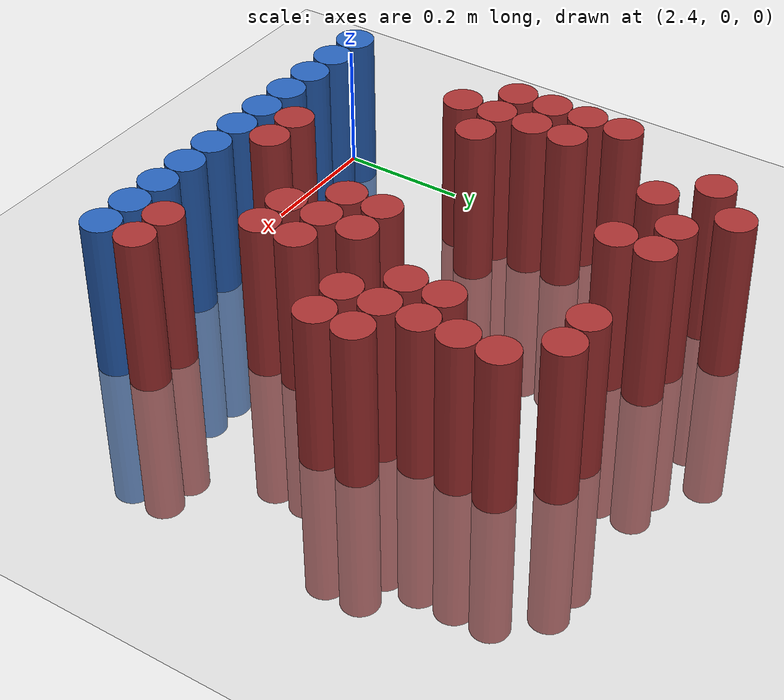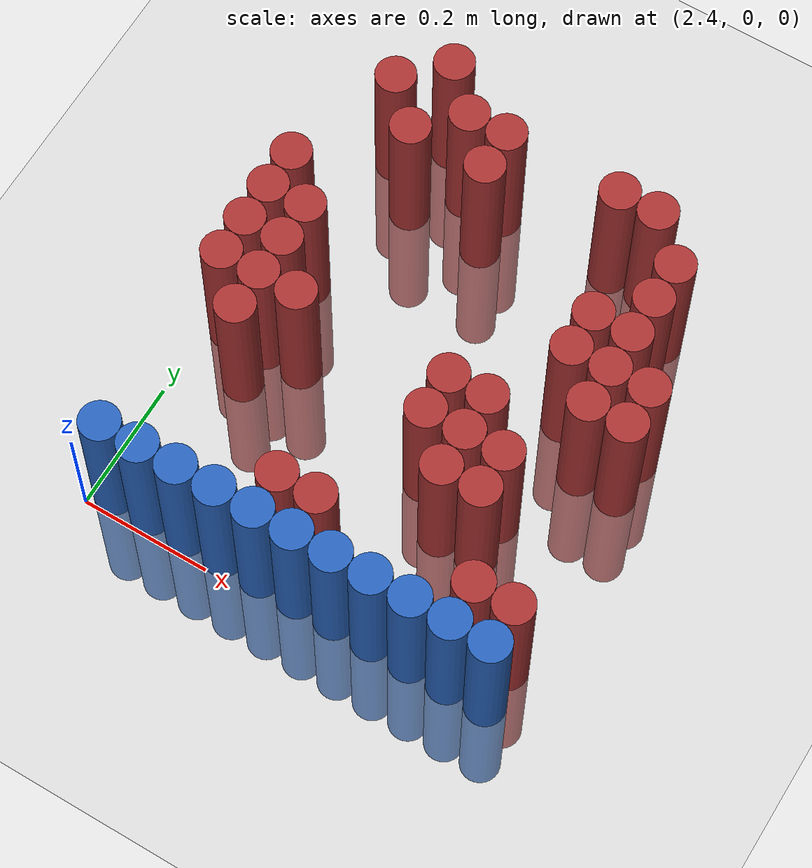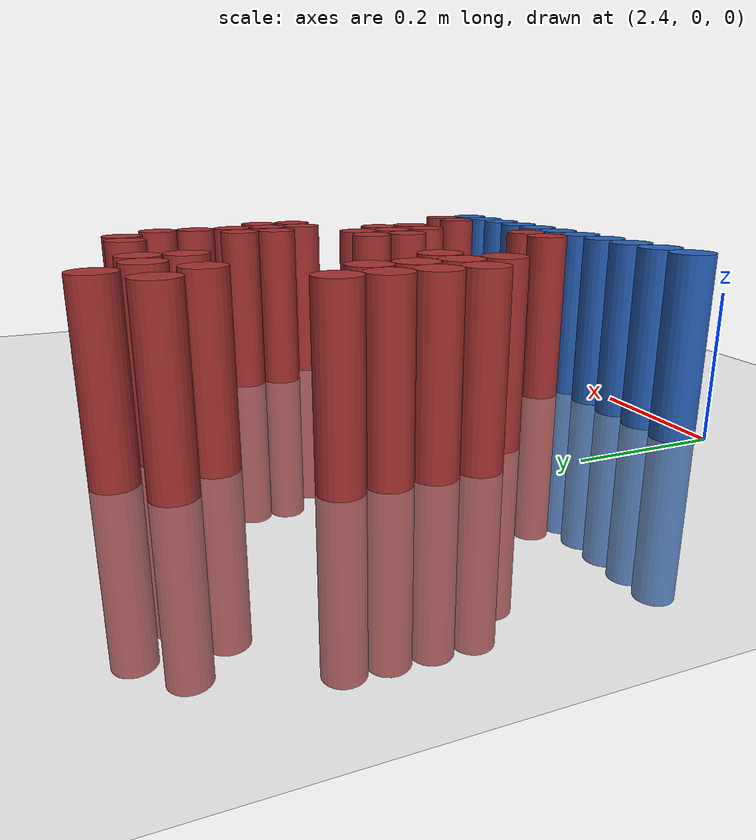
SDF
<sdf version="1.6">
 <world name="default">
  <model name="ground_plane">
   <static>1</static>
   <link name="link">
    <collision name="collision">
     <geometry><plane><normal>0 0 1</normal><size>100 100</size></plane></geometry>
     <surface><friction><ode><mu>100</mu><mu2>50</mu2></ode></friction></surface>
    </collision>
    <visual name="visual">
     <cast_shadows>0</cast_shadows>
     <geometry><plane><normal>0 0 1</normal><size>100 100</size></plane></geometry>
     <material>
      <script><uri>file://media/materials/scripts/gazebo.material</uri><name>Gazebo/Grey</name></script>
     </material>
    </visual>
   </link>
  </model>
  <model name="unit_cylinder_210">
   <static>1</static>
   <pose>2.550000 0.750000 0.000000 0.000000 0.000000 0.000000</pose>
   <link name="link">
    <inertial>
     <mass>1</mass>
     <inertia><ixx>0.145833</ixx><ixy>0</ixy><ixz>0</ixz><iyy>0.145833</iyy><iyz>0</iyz><izz>0.125</izz></inertia>
    </inertial>
    <collision name="collision">
     <geometry><cylinder><radius>0.030000</radius><length>0.5</length></cylinder></geometry>
    </collision>
    <visual name="visual">
     <geometry><cylinder><radius>0.030000</radius><length>0.5</length></cylinder></geometry>
     <material>
      <ambient>0.648000 0.192000 0.192000 1</ambient>
      <diffuse>0.648000 0.192000 0.192000 1</diffuse>
     </material>
     <material>
      <script><name>Gazebo/Grey</name><uri>file://media/materials/scripts/gazebo.material</uri></script>
     </material>
    </visual>
   </link>
  </model>
  <model name="unit_cylinder_222">
   <static>1</static>
   <pose>2.490000 0.690000 0.000000 0.000000 0.000000 0.000000</pose>
   <link name="link">
    <inertial>
     <mass>1</mass>
     <inertia><ixx>0.145833</ixx><ixy>0</ixy><ixz>0</ixz><iyy>0.145833</iyy><iyz>0</iyz><izz>0.125</izz></inertia>
    </inertial>
    <collision name="collision">
     <geometry><cylinder><radius>0.030000</radius><length>0.5</length></cylinder></geometry>
    </collision>
    <visual name="visual">
     <geometry><cylinder><radius>0.030000</radius><length>0.5</length></cylinder></geometry>
     <material>
      <ambient>0.648000 0.192000 0.192000 1</ambient>
      <diffuse>0.648000 0.192000 0.192000 1</diffuse>
     </material>
     <material>
      <script><name>Gazebo/Grey</name><uri>file://media/materials/scripts/gazebo.material</uri></script>
     </material>
    </visual>
   </link>
  </model>
  <model name="unit_cylinder_223">
   <static>1</static>
   <pose>2.610000 0.690000 0.000000 0.000000 0.000000 0.000000</pose>
   <link name="link">
    <inertial>
     <mass>1</mass>
     <inertia><ixx>0.145833</ixx><ixy>0</ixy><ixz>0</ixz><iyy>0.145833</iyy><iyz>0</iyz><izz>0.125</izz></inertia>
    </inertial>
    <collision name="collision">
     <geometry><cylinder><radius>0.030000</radius><length>0.5</length></cylinder></geometry>
    </collision>
    <visual name="visual">
     <geometry><cylinder><radius>0.030000</radius><length>0.5</length></cylinder></geometry>
     <material>
      <ambient>0.648000 0.192000 0.192000 1</ambient>
      <diffuse>0.648000 0.192000 0.192000 1</diffuse>
     </material>
     <material>
      <script><name>Gazebo/Grey</name><uri>file://media/materials/scripts/gazebo.material</uri></script>
     </material>
    </visual>
   </link>
  </model>
  <model name="unit_cylinder_224">
   <static>1</static>
   <pose>2.670000 0.690000 0.000000 0.000000 0.000000 0.000000</pose>
   <link name="link">
    <inertial>
     <mass>1</mass>
     <inertia><ixx>0.145833</ixx><ixy>0</ixy><ixz>0</ixz><iyy>0.145833</iyy><iyz>0</iyz><izz>0.125</izz></inertia>
    </inertial>
    <collision name="collision">
     <geometry><cylinder><radius>0.030000</radius><length>0.5</length></cylinder></geometry>
    </collision>
    <visual name="visual">
     <geometry><cylinder><radius>0.030000</radius><length>0.5</length></cylinder></geometry>
     <material>
      <ambient>0.648000 0.192000 0.192000 1</ambient>
      <diffuse>0.648000 0.192000 0.192000 1</diffuse>
     </material>
     <material>
      <script><name>Gazebo/Grey</name><uri>file://media/materials/scripts/gazebo.material</uri></script>
     </material>
    </visual>
   </link>
  </model>
  <model name="unit_cylinder_225">
   <static>1</static>
   <pose>2.850000 0.690000 0.000000 0.000000 0.000000 0.000000</pose>
   <link name="link">
    <inertial>
     <mass>1</mass>
     <inertia><ixx>0.145833</ixx><ixy>0</ixy><ixz>0</ixz><iyy>0.145833</iyy><iyz>0</iyz><izz>0.125</izz></inertia>
    </inertial>
    <collision name="collision">
     <geometry><cylinder><radius>0.030000</radius><length>0.5</length></cylinder></geometry>
    </collision>
    <visual name="visual">
     <geometry><cylinder><radius>0.030000</radius><length>0.5</length></cylinder></geometry>
     <material>
      <ambient>0.648000 0.192000 0.192000 1</ambient>
      <diffuse>0.648000 0.192000 0.192000 1</diffuse>
     </material>
     <material>
      <script><name>Gazebo/Grey</name><uri>file://media/materials/scripts/gazebo.material</uri></script>
     </material>
    </visual>
   </link>
  </model>
  <model name="unit_cylinder_226">
   <static>1</static>
   <pose>2.910000 0.690000 0.000000 0.000000 0.000000 0.000000</pose>
   <link name="link">
    <inertial>
     <mass>1</mass>
     <inertia><ixx>0.145833</ixx><ixy>0</ixy><ixz>0</ixz><iyy>0.145833</iyy><iyz>0</iyz><izz>0.125</izz></inertia>
    </inertial>
    <collision name="collision">
     <geometry><cylinder><radius>0.030000</radius><length>0.5</length></cylinder></geometry>
    </collision>
    <visual name="visual">
     <geometry><cylinder><radius>0.030000</radius><length>0.5</length></cylinder></geometry>
     <material>
      <ambient>0.648000 0.192000 0.192000 1</ambient>
      <diffuse>0.648000 0.192000 0.192000 1</diffuse>
     </material>
     <material>
      <script><name>Gazebo/Grey</name><uri>file://media/materials/scripts/gazebo.material</uri></script>
     </material>
    </visual>
   </link>
  </model>
  <model name="unit_cylinder_232">
   <static>1</static>
   <pose>2.550000 0.630000 0.000000 0.000000 0.000000 0.000000</pose>
   <link name="link">
    <inertial>
     <mass>1</mass>
     <inertia><ixx>0.145833</ixx><ixy>0</ixy><ixz>0</ixz><iyy>0.145833</iyy><iyz>0</iyz><izz>0.125</izz></inertia>
    </inertial>
    <collision name="collision">
     <geometry><cylinder><radius>0.030000</radius><length>0.5</length></cylinder></geometry>
    </collision>
    <visual name="visual">
     <geometry><cylinder><radius>0.030000</radius><length>0.5</length></cylinder></geometry>
     <material>
      <ambient>0.648000 0.192000 0.192000 1</ambient>
      <diffuse>0.648000 0.192000 0.192000 1</diffuse>
     </material>
     <material>
      <script><name>Gazebo/Grey</name><uri>file://media/materials/scripts/gazebo.material</uri></script>
     </material>
    </visual>
   </link>
  </model>
  <model name="unit_cylinder_233">
   <static>1</static>
   <pose>2.670000 0.630000 0.000000 0.000000 0.000000 0.000000</pose>
   <link name="link">
    <inertial>
     <mass>1</mass>
     <inertia><ixx>0.145833</ixx><ixy>0</ixy><ixz>0</ixz><iyy>0.145833</iyy><iyz>0</iyz><izz>0.125</izz></inertia>
    </inertial>
    <collision name="collision">
     <geometry><cylinder><radius>0.030000</radius><length>0.5</length></cylinder></geometry>
    </collision>
    <visual name="visual">
     <geometry><cylinder><radius>0.030000</radius><length>0.5</length></cylinder></geometry>
     <material>
      <ambient>0.648000 0.192000 0.192000 1</ambient>
      <diffuse>0.648000 0.192000 0.192000 1</diffuse>
     </material>
     <material>
      <script><name>Gazebo/Grey</name><uri>file://media/materials/scripts/gazebo.material</uri></script>
     </material>
    </visual>
   </link>
  </model>
  <model name="unit_cylinder_234">
   <static>1</static>
   <pose>2.970000 0.630000 0.000000 0.000000 0.000000 0.000000</pose>
   <link name="link">
    <inertial>
     <mass>1</mass>
     <inertia><ixx>0.145833</ixx><ixy>0</ixy><ixz>0</ixz><iyy>0.145833</iyy><iyz>0</iyz><izz>0.125</izz></inertia>
    </inertial>
    <collision name="collision">
     <geometry><cylinder><radius>0.030000</radius><length>0.5</length></cylinder></geometry>
    </collision>
    <visual name="visual">
     <geometry><cylinder><radius>0.030000</radius><length>0.5</length></cylinder></geometry>
     <material>
      <ambient>0.648000 0.192000 0.192000 1</ambient>
      <diffuse>0.648000 0.192000 0.192000 1</diffuse>
     </material>
     <material>
      <script><name>Gazebo/Grey</name><uri>file://media/materials/scripts/gazebo.material</uri></script>
     </material>
    </visual>
   </link>
  </model>
  <model name="unit_cylinder_236">
   <static>1</static>
   <pose>2.970000 0.570000 0.000000 0.000000 0.000000 0.000000</pose>
   <link name="link">
    <inertial>
     <mass>1</mass>
     <inertia><ixx>0.145833</ixx><ixy>0</ixy><ixz>0</ixz><iyy>0.145833</iyy><iyz>0</iyz><izz>0.125</izz></inertia>
    </inertial>
    <collision name="collision">
     <geometry><cylinder><radius>0.030000</radius><length>0.5</length></cylinder></geometry>
    </collision>
    <visual name="visual">
     <geometry><cylinder><radius>0.030000</radius><length>0.5</length></cylinder></geometry>
     <material>
      <ambient>0.648000 0.192000 0.192000 1</ambient>
      <diffuse>0.648000 0.192000 0.192000 1</diffuse>
     </material>
     <material>
      <script><name>Gazebo/Grey</name><uri>file://media/materials/scripts/gazebo.material</uri></script>
     </material>
    </visual>
   </link>
  </model>
  <model name="unit_cylinder_240">
   <static>1</static>
   <pose>2.430000 0.510000 0.000000 0.000000 0.000000 0.000000</pose>
   <link name="link">
    <inertial>
     <mass>1</mass>
     <inertia><ixx>0.145833</ixx><ixy>0</ixy><ixz>0</ixz><iyy>0.145833</iyy><iyz>0</iyz><izz>0.125</izz></inertia>
    </inertial>
    <collision name="collision">
     <geometry><cylinder><radius>0.030000</radius><length>0.5</length></cylinder></geometry>
    </collision>
    <visual name="visual">
     <geometry><cylinder><radius>0.030000</radius><length>0.5</length></cylinder></geometry>
     <material>
      <ambient>0.648000 0.192000 0.192000 1</ambient>
      <diffuse>0.648000 0.192000 0.192000 1</diffuse>
     </material>
     <material>
      <script><name>Gazebo/Grey</name><uri>file://media/materials/scripts/gazebo.material</uri></script>
     </material>
    </visual>
   </link>
  </model>
  <model name="unit_cylinder_241">
   <static>1</static>
   <pose>2.910000 0.510000 0.000000 0.000000 0.000000 0.000000</pose>
   <link name="link">
    <inertial>
     <mass>1</mass>
     <inertia><ixx>0.145833</ixx><ixy>0</ixy><ixz>0</ixz><iyy>0.145833</iyy><iyz>0</iyz><izz>0.125</izz></inertia>
    </inertial>
    <collision name="collision">
     <geometry><cylinder><radius>0.030000</radius><length>0.5</length></cylinder></geometry>
    </collision>
    <visual name="visual">
     <geometry><cylinder><radius>0.030000</radius><length>0.5</length></cylinder></geometry>
     <material>
      <ambient>0.648000 0.192000 0.192000 1</ambient>
      <diffuse>0.648000 0.192000 0.192000 1</diffuse>
     </material>
     <material>
      <script><name>Gazebo/Grey</name><uri>file://media/materials/scripts/gazebo.material</uri></script>
     </material>
    </visual>
   </link>
  </model>
  <model name="unit_cylinder_242">
   <static>1</static>
   <pose>2.970000 0.510000 0.000000 0.000000 0.000000 0.000000</pose>
   <link name="link">
    <inertial>
     <mass>1</mass>
     <inertia><ixx>0.145833</ixx><ixy>0</ixy><ixz>0</ixz><iyy>0.145833</iyy><iyz>0</iyz><izz>0.125</izz></inertia>
    </inertial>
    <collision name="collision">
     <geometry><cylinder><radius>0.030000</radius><length>0.5</length></cylinder></geometry>
    </collision>
    <visual name="visual">
     <geometry><cylinder><radius>0.030000</radius><length>0.5</length></cylinder></geometry>
     <material>
      <ambient>0.648000 0.192000 0.192000 1</ambient>
      <diffuse>0.648000 0.192000 0.192000 1</diffuse>
     </material>
     <material>
      <script><name>Gazebo/Grey</name><uri>file://media/materials/scripts/gazebo.material</uri></script>
     </material>
    </visual>
   </link>
  </model>
  <model name="unit_cylinder_248">
   <static>1</static>
   <pose>2.430000 0.450000 0.000000 0.000000 0.000000 0.000000</pose>
   <link name="link">
    <inertial>
     <mass>1</mass>
     <inertia><ixx>0.145833</ixx><ixy>0</ixy><ixz>0</ixz><iyy>0.145833</iyy><iyz>0</iyz><izz>0.125</izz></inertia>
    </inertial>
    <collision name="collision">
     <geometry><cylinder><radius>0.030000</radius><length>0.5</length></cylinder></geometry>
    </collision>
    <visual name="visual">
     <geometry><cylinder><radius>0.030000</radius><length>0.5</length></cylinder></geometry>
     <material>
      <ambient>0.648000 0.192000 0.192000 1</ambient>
      <diffuse>0.648000 0.192000 0.192000 1</diffuse>
     </material>
     <material>
      <script><name>Gazebo/Grey</name><uri>file://media/materials/scripts/gazebo.material</uri></script>
     </material>
    </visual>
   </link>
  </model>
  <model name="unit_cylinder_249">
   <static>1</static>
   <pose>2.490000 0.450000 0.000000 0.000000 0.000000 0.000000</pose>
   <link name="link">
    <inertial>
     <mass>1</mass>
     <inertia><ixx>0.145833</ixx><ixy>0</ixy><ixz>0</ixz><iyy>0.145833</iyy><iyz>0</iyz><izz>0.125</izz></inertia>
    </inertial>
    <collision name="collision">
     <geometry><cylinder><radius>0.030000</radius><length>0.5</length></cylinder></geometry>
    </collision>
    <visual name="visual">
     <geometry><cylinder><radius>0.030000</radius><length>0.5</length></cylinder></geometry>
     <material>
      <ambient>0.648000 0.192000 0.192000 1</ambient>
      <diffuse>0.648000 0.192000 0.192000 1</diffuse>
     </material>
     <material>
      <script><name>Gazebo/Grey</name><uri>file://media/materials/scripts/gazebo.material</uri></script>
     </material>
    </visual>
   </link>
  </model>
  <model name="unit_cylinder_250">
   <static>1</static>
   <pose>2.910000 0.450000 0.000000 0.000000 0.000000 0.000000</pose>
   <link name="link">
    <inertial>
     <mass>1</mass>
     <inertia><ixx>0.145833</ixx><ixy>0</ixy><ixz>0</ixz><iyy>0.145833</iyy><iyz>0</iyz><izz>0.125</izz></inertia>
    </inertial>
    <collision name="collision">
     <geometry><cylinder><radius>0.030000</radius><length>0.5</length></cylinder></geometry>
    </collision>
    <visual name="visual">
     <geometry><cylinder><radius>0.030000</radius><length>0.5</length></cylinder></geometry>
     <material>
      <ambient>0.648000 0.192000 0.192000 1</ambient>
      <diffuse>0.648000 0.192000 0.192000 1</diffuse>
     </material>
     <material>
      <script><name>Gazebo/Grey</name><uri>file://media/materials/scripts/gazebo.material</uri></script>
     </material>
    </visual>
   </link>
  </model>
  <model name="unit_cylinder_251">
   <static>1</static>
   <pose>2.970000 0.450000 0.000000 0.000000 0.000000 0.000000</pose>
   <link name="link">
    <inertial>
     <mass>1</mass>
     <inertia><ixx>0.145833</ixx><ixy>0</ixy><ixz>0</ixz><iyy>0.145833</iyy><iyz>0</iyz><izz>0.125</izz></inertia>
    </inertial>
    <collision name="collision">
     <geometry><cylinder><radius>0.030000</radius><length>0.5</length></cylinder></geometry>
    </collision>
    <visual name="visual">
     <geometry><cylinder><radius>0.030000</radius><length>0.5</length></cylinder></geometry>
     <material>
      <ambient>0.648000 0.192000 0.192000 1</ambient>
      <diffuse>0.648000 0.192000 0.192000 1</diffuse>
     </material>
     <material>
      <script><name>Gazebo/Grey</name><uri>file://media/materials/scripts/gazebo.material</uri></script>
     </material>
    </visual>
   </link>
  </model>
  <model name="unit_cylinder_252">
   <static>1</static>
   <pose>3.030000 0.450000 0.000000 0.000000 0.000000 0.000000</pose>
   <link name="link">
    <inertial>
     <mass>1</mass>
     <inertia><ixx>0.145833</ixx><ixy>0</ixy><ixz>0</ixz><iyy>0.145833</iyy><iyz>0</iyz><izz>0.125</izz></inertia>
    </inertial>
    <collision name="collision">
     <geometry><cylinder><radius>0.030000</radius><length>0.5</length></cylinder></geometry>
    </collision>
    <visual name="visual">
     <geometry><cylinder><radius>0.030000</radius><length>0.5</length></cylinder></geometry>
     <material>
      <ambient>0.648000 0.192000 0.192000 1</ambient>
      <diffuse>0.648000 0.192000 0.192000 1</diffuse>
     </material>
     <material>
      <script><name>Gazebo/Grey</name><uri>file://media/materials/scripts/gazebo.material</uri></script>
     </material>
    </visual>
   </link>
  </model>
  <model name="unit_cylinder_260">
   <static>1</static>
   <pose>2.430000 0.390000 0.000000 0.000000 0.000000 0.000000</pose>
   <link name="link">
    <inertial>
     <mass>1</mass>
     <inertia><ixx>0.145833</ixx><ixy>0</ixy><ixz>0</ixz><iyy>0.145833</iyy><iyz>0</iyz><izz>0.125</izz></inertia>
    </inertial>
    <collision name="collision">
     <geometry><cylinder><radius>0.030000</radius><length>0.5</length></cylinder></geometry>
    </collision>
    <visual name="visual">
     <geometry><cylinder><radius>0.030000</radius><length>0.5</length></cylinder></geometry>
     <material>
      <ambient>0.648000 0.192000 0.192000 1</ambient>
      <diffuse>0.648000 0.192000 0.192000 1</diffuse>
     </material>
     <material>
      <script><name>Gazebo/Grey</name><uri>file://media/materials/scripts/gazebo.material</uri></script>
     </material>
    </visual>
   </link>
  </model>
  <model name="unit_cylinder_261">
   <static>1</static>
   <pose>2.490000 0.390000 0.000000 0.000000 0.000000 0.000000</pose>
   <link name="link">
    <inertial>
     <mass>1</mass>
     <inertia><ixx>0.145833</ixx><ixy>0</ixy><ixz>0</ixz><iyy>0.145833</iyy><iyz>0</iyz><izz>0.125</izz></inertia>
    </inertial>
    <collision name="collision">
     <geometry><cylinder><radius>0.030000</radius><length>0.5</length></cylinder></geometry>
    </collision>
    <visual name="visual">
     <geometry><cylinder><radius>0.030000</radius><length>0.5</length></cylinder></geometry>
     <material>
      <ambient>0.648000 0.192000 0.192000 1</ambient>
      <diffuse>0.648000 0.192000 0.192000 1</diffuse>
     </material>
     <material>
      <script><name>Gazebo/Grey</name><uri>file://media/materials/scripts/gazebo.material</uri></script>
     </material>
    </visual>
   </link>
  </model>
  <model name="unit_cylinder_262">
   <static>1</static>
   <pose>2.970000 0.390000 0.000000 0.000000 0.000000 0.000000</pose>
   <link name="link">
    <inertial>
     <mass>1</mass>
     <inertia><ixx>0.145833</ixx><ixy>0</ixy><ixz>0</ixz><iyy>0.145833</iyy><iyz>0</iyz><izz>0.125</izz></inertia>
    </inertial>
    <collision name="collision">
     <geometry><cylinder><radius>0.030000</radius><length>0.5</length></cylinder></geometry>
    </collision>
    <visual name="visual">
     <geometry><cylinder><radius>0.030000</radius><length>0.5</length></cylinder></geometry>
     <material>
      <ambient>0.648000 0.192000 0.192000 1</ambient>
      <diffuse>0.648000 0.192000 0.192000 1</diffuse>
     </material>
     <material>
      <script><name>Gazebo/Grey</name><uri>file://media/materials/scripts/gazebo.material</uri></script>
     </material>
    </visual>
   </link>
  </model>
  <model name="unit_cylinder_263">
   <static>1</static>
   <pose>3.030000 0.390000 0.000000 0.000000 0.000000 0.000000</pose>
   <link name="link">
    <inertial>
     <mass>1</mass>
     <inertia><ixx>0.145833</ixx><ixy>0</ixy><ixz>0</ixz><iyy>0.145833</iyy><iyz>0</iyz><izz>0.125</izz></inertia>
    </inertial>
    <collision name="collision">
     <geometry><cylinder><radius>0.030000</radius><length>0.5</length></cylinder></geometry>
    </collision>
    <visual name="visual">
     <geometry><cylinder><radius>0.030000</radius><length>0.5</length></cylinder></geometry>
     <material>
      <ambient>0.648000 0.192000 0.192000 1</ambient>
      <diffuse>0.648000 0.192000 0.192000 1</diffuse>
     </material>
     <material>
      <script><name>Gazebo/Grey</name><uri>file://media/materials/scripts/gazebo.material</uri></script>
     </material>
    </visual>
   </link>
  </model>
  <model name="unit_cylinder_271">
   <static>1</static>
   <pose>2.430000 0.330000 0.000000 0.000000 0.000000 0.000000</pose>
   <link name="link">
    <inertial>
     <mass>1</mass>
     <inertia><ixx>0.145833</ixx><ixy>0</ixy><ixz>0</ixz><iyy>0.145833</iyy><iyz>0</iyz><izz>0.125</izz></inertia>
    </inertial>
    <collision name="collision">
     <geometry><cylinder><radius>0.030000</radius><length>0.5</length></cylinder></geometry>
    </collision>
    <visual name="visual">
     <geometry><cylinder><radius>0.030000</radius><length>0.5</length></cylinder></geometry>
     <material>
      <ambient>0.648000 0.192000 0.192000 1</ambient>
      <diffuse>0.648000 0.192000 0.192000 1</diffuse>
     </material>
     <material>
      <script><name>Gazebo/Grey</name><uri>file://media/materials/scripts/gazebo.material</uri></script>
     </material>
    </visual>
   </link>
  </model>
  <model name="unit_cylinder_272">
   <static>1</static>
   <pose>2.490000 0.330000 0.000000 0.000000 0.000000 0.000000</pose>
   <link name="link">
    <inertial>
     <mass>1</mass>
     <inertia><ixx>0.145833</ixx><ixy>0</ixy><ixz>0</ixz><iyy>0.145833</iyy><iyz>0</iyz><izz>0.125</izz></inertia>
    </inertial>
    <collision name="collision">
     <geometry><cylinder><radius>0.030000</radius><length>0.5</length></cylinder></geometry>
    </collision>
    <visual name="visual">
     <geometry><cylinder><radius>0.030000</radius><length>0.5</length></cylinder></geometry>
     <material>
      <ambient>0.648000 0.192000 0.192000 1</ambient>
      <diffuse>0.648000 0.192000 0.192000 1</diffuse>
     </material>
     <material>
      <script><name>Gazebo/Grey</name><uri>file://media/materials/scripts/gazebo.material</uri></script>
     </material>
    </visual>
   </link>
  </model>
  <model name="unit_cylinder_273">
   <static>1</static>
   <pose>2.550000 0.330000 0.000000 0.000000 0.000000 0.000000</pose>
   <link name="link">
    <inertial>
     <mass>1</mass>
     <inertia><ixx>0.145833</ixx><ixy>0</ixy><ixz>0</ixz><iyy>0.145833</iyy><iyz>0</iyz><izz>0.125</izz></inertia>
    </inertial>
    <collision name="collision">
     <geometry><cylinder><radius>0.030000</radius><length>0.5</length></cylinder></geometry>
    </collision>
    <visual name="visual">
     <geometry><cylinder><radius>0.030000</radius><length>0.5</length></cylinder></geometry>
     <material>
      <ambient>0.648000 0.192000 0.192000 1</ambient>
      <diffuse>0.648000 0.192000 0.192000 1</diffuse>
     </material>
     <material>
      <script><name>Gazebo/Grey</name><uri>file://media/materials/scripts/gazebo.material</uri></script>
     </material>
    </visual>
   </link>
  </model>
  <model name="unit_cylinder_274">
   <static>1</static>
   <pose>2.790000 0.330000 0.000000 0.000000 0.000000 0.000000</pose>
   <link name="link">
    <inertial>
     <mass>1</mass>
     <inertia><ixx>0.145833</ixx><ixy>0</ixy><ixz>0</ixz><iyy>0.145833</iyy><iyz>0</iyz><izz>0.125</izz></inertia>
    </inertial>
    <collision name="collision">
     <geometry><cylinder><radius>0.030000</radius><length>0.5</length></cylinder></geometry>
    </collision>
    <visual name="visual">
     <geometry><cylinder><radius>0.030000</radius><length>0.5</length></cylinder></geometry>
     <material>
      <ambient>0.648000 0.192000 0.192000 1</ambient>
      <diffuse>0.648000 0.192000 0.192000 1</diffuse>
     </material>
     <material>
      <script><name>Gazebo/Grey</name><uri>file://media/materials/scripts/gazebo.material</uri></script>
     </material>
    </visual>
   </link>
  </model>
  <model name="unit_cylinder_275">
   <static>1</static>
   <pose>2.850000 0.330000 0.000000 0.000000 0.000000 0.000000</pose>
   <link name="link">
    <inertial>
     <mass>1</mass>
     <inertia><ixx>0.145833</ixx><ixy>0</ixy><ixz>0</ixz><iyy>0.145833</iyy><iyz>0</iyz><izz>0.125</izz></inertia>
    </inertial>
    <collision name="collision">
     <geometry><cylinder><radius>0.030000</radius><length>0.5</length></cylinder></geometry>
    </collision>
    <visual name="visual">
     <geometry><cylinder><radius>0.030000</radius><length>0.5</length></cylinder></geometry>
     <material>
      <ambient>0.648000 0.192000 0.192000 1</ambient>
      <diffuse>0.648000 0.192000 0.192000 1</diffuse>
     </material>
     <material>
      <script><name>Gazebo/Grey</name><uri>file://media/materials/scripts/gazebo.material</uri></script>
     </material>
    </visual>
   </link>
  </model>
  <model name="unit_cylinder_281">
   <static>1</static>
   <pose>2.490000 0.270000 0.000000 0.000000 0.000000 0.000000</pose>
   <link name="link">
    <inertial>
     <mass>1</mass>
     <inertia><ixx>0.145833</ixx><ixy>0</ixy><ixz>0</ixz><iyy>0.145833</iyy><iyz>0</iyz><izz>0.125</izz></inertia>
    </inertial>
    <collision name="collision">
     <geometry><cylinder><radius>0.030000</radius><length>0.5</length></cylinder></geometry>
    </collision>
    <visual name="visual">
     <geometry><cylinder><radius>0.030000</radius><length>0.5</length></cylinder></geometry>
     <material>
      <ambient>0.648000 0.192000 0.192000 1</ambient>
      <diffuse>0.648000 0.192000 0.192000 1</diffuse>
     </material>
     <material>
      <script><name>Gazebo/Grey</name><uri>file://media/materials/scripts/gazebo.material</uri></script>
     </material>
    </visual>
   </link>
  </model>
  <model name="unit_cylinder_282">
   <static>1</static>
   <pose>2.790000 0.270000 0.000000 0.000000 0.000000 0.000000</pose>
   <link name="link">
    <inertial>
     <mass>1</mass>
     <inertia><ixx>0.145833</ixx><ixy>0</ixy><ixz>0</ixz><iyy>0.145833</iyy><iyz>0</iyz><izz>0.125</izz></inertia>
    </inertial>
    <collision name="collision">
     <geometry><cylinder><radius>0.030000</radius><length>0.5</length></cylinder></geometry>
    </collision>
    <visual name="visual">
     <geometry><cylinder><radius>0.030000</radius><length>0.5</length></cylinder></geometry>
     <material>
      <ambient>0.648000 0.192000 0.192000 1</ambient>
      <diffuse>0.648000 0.192000 0.192000 1</diffuse>
     </material>
     <material>
      <script><name>Gazebo/Grey</name><uri>file://media/materials/scripts/gazebo.material</uri></script>
     </material>
    </visual>
   </link>
  </model>
  <model name="unit_cylinder_283">
   <static>1</static>
   <pose>2.850000 0.270000 0.000000 0.000000 0.000000 0.000000</pose>
   <link name="link">
    <inertial>
     <mass>1</mass>
     <inertia><ixx>0.145833</ixx><ixy>0</ixy><ixz>0</ixz><iyy>0.145833</iyy><iyz>0</iyz><izz>0.125</izz></inertia>
    </inertial>
    <collision name="collision">
     <geometry><cylinder><radius>0.030000</radius><length>0.5</length></cylinder></geometry>
    </collision>
    <visual name="visual">
     <geometry><cylinder><radius>0.030000</radius><length>0.5</length></cylinder></geometry>
     <material>
      <ambient>0.648000 0.192000 0.192000 1</ambient>
      <diffuse>0.648000 0.192000 0.192000 1</diffuse>
     </material>
     <material>
      <script><name>Gazebo/Grey</name><uri>file://media/materials/scripts/gazebo.material</uri></script>
     </material>
    </visual>
   </link>
  </model>
  <model name="unit_cylinder_284">
   <static>1</static>
   <pose>2.910000 0.270000 0.000000 0.000000 0.000000 0.000000</pose>
   <link name="link">
    <inertial>
     <mass>1</mass>
     <inertia><ixx>0.145833</ixx><ixy>0</ixy><ixz>0</ixz><iyy>0.145833</iyy><iyz>0</iyz><izz>0.125</izz></inertia>
    </inertial>
    <collision name="collision">
     <geometry><cylinder><radius>0.030000</radius><length>0.5</length></cylinder></geometry>
    </collision>
    <visual name="visual">
     <geometry><cylinder><radius>0.030000</radius><length>0.5</length></cylinder></geometry>
     <material>
      <ambient>0.648000 0.192000 0.192000 1</ambient>
      <diffuse>0.648000 0.192000 0.192000 1</diffuse>
     </material>
     <material>
      <script><name>Gazebo/Grey</name><uri>file://media/materials/scripts/gazebo.material</uri></script>
     </material>
    </visual>
   </link>
  </model>
  <model name="unit_cylinder_288">
   <static>1</static>
   <pose>2.850000 0.210000 0.000000 0.000000 0.000000 0.000000</pose>
   <link name="link">
    <inertial>
     <mass>1</mass>
     <inertia><ixx>0.145833</ixx><ixy>0</ixy><ixz>0</ixz><iyy>0.145833</iyy><iyz>0</iyz><izz>0.125</izz></inertia>
    </inertial>
    <collision name="collision">
     <geometry><cylinder><radius>0.030000</radius><length>0.5</length></cylinder></geometry>
    </collision>
    <visual name="visual">
     <geometry><cylinder><radius>0.030000</radius><length>0.5</length></cylinder></geometry>
     <material>
      <ambient>0.648000 0.192000 0.192000 1</ambient>
      <diffuse>0.648000 0.192000 0.192000 1</diffuse>
     </material>
     <material>
      <script><name>Gazebo/Grey</name><uri>file://media/materials/scripts/gazebo.material</uri></script>
     </material>
    </visual>
   </link>
  </model>
  <model name="unit_cylinder_289">
   <static>1</static>
   <pose>2.910000 0.210000 0.000000 0.000000 0.000000 0.000000</pose>
   <link name="link">
    <inertial>
     <mass>1</mass>
     <inertia><ixx>0.145833</ixx><ixy>0</ixy><ixz>0</ixz><iyy>0.145833</iyy><iyz>0</iyz><izz>0.125</izz></inertia>
    </inertial>
    <collision name="collision">
     <geometry><cylinder><radius>0.030000</radius><length>0.5</length></cylinder></geometry>
    </collision>
    <visual name="visual">
     <geometry><cylinder><radius>0.030000</radius><length>0.5</length></cylinder></geometry>
     <material>
      <ambient>0.648000 0.192000 0.192000 1</ambient>
      <diffuse>0.648000 0.192000 0.192000 1</diffuse>
     </material>
     <material>
      <script><name>Gazebo/Grey</name><uri>file://media/materials/scripts/gazebo.material</uri></script>
     </material>
    </visual>
   </link>
  </model>
  <model name="unit_cylinder_298">
   <static>1</static>
   <pose>2.670000 0.090000 0.000000 0.000000 0.000000 0.000000</pose>
   <link name="link">
    <inertial>
     <mass>1</mass>
     <inertia><ixx>0.145833</ixx><ixy>0</ixy><ixz>0</ixz><iyy>0.145833</iyy><iyz>0</iyz><izz>0.125</izz></inertia>
    </inertial>
    <collision name="collision">
     <geometry><cylinder><radius>0.030000</radius><length>0.5</length></cylinder></geometry>
    </collision>
    <visual name="visual">
     <geometry><cylinder><radius>0.030000</radius><length>0.5</length></cylinder></geometry>
     <material>
      <ambient>0.648000 0.192000 0.192000 1</ambient>
      <diffuse>0.648000 0.192000 0.192000 1</diffuse>
     </material>
     <material>
      <script><name>Gazebo/Grey</name><uri>file://media/materials/scripts/gazebo.material</uri></script>
     </material>
    </visual>
   </link>
  </model>
  <model name="unit_cylinder_299">
   <static>1</static>
   <pose>2.730000 0.090000 0.000000 0.000000 0.000000 0.000000</pose>
   <link name="link">
    <inertial>
     <mass>1</mass>
     <inertia><ixx>0.145833</ixx><ixy>0</ixy><ixz>0</ixz><iyy>0.145833</iyy><iyz>0</iyz><izz>0.125</izz></inertia>
    </inertial>
    <collision name="collision">
     <geometry><cylinder><radius>0.030000</radius><length>0.5</length></cylinder></geometry>
    </collision>
    <visual name="visual">
     <geometry><cylinder><radius>0.030000</radius><length>0.5</length></cylinder></geometry>
     <material>
      <ambient>0.648000 0.192000 0.192000 1</ambient>
      <diffuse>0.648000 0.192000 0.192000 1</diffuse>
     </material>
     <material>
      <script><name>Gazebo/Grey</name><uri>file://media/materials/scripts/gazebo.material</uri></script>
     </material>
    </visual>
   </link>
  </model>
  <model name="unit_cylinder_300">
   <static>1</static>
   <pose>2.970000 0.090000 0.000000 0.000000 0.000000 0.000000</pose>
   <link name="link">
    <inertial>
     <mass>1</mass>
     <inertia><ixx>0.145833</ixx><ixy>0</ixy><ixz>0</ixz><iyy>0.145833</iyy><iyz>0</iyz><izz>0.125</izz></inertia>
    </inertial>
    <collision name="collision">
     <geometry><cylinder><radius>0.030000</radius><length>0.5</length></cylinder></geometry>
    </collision>
    <visual name="visual">
     <geometry><cylinder><radius>0.030000</radius><length>0.5</length></cylinder></geometry>
     <material>
      <ambient>0.648000 0.192000 0.192000 1</ambient>
      <diffuse>0.648000 0.192000 0.192000 1</diffuse>
     </material>
     <material>
      <script><name>Gazebo/Grey</name><uri>file://media/materials/scripts/gazebo.material</uri></script>
     </material>
    </visual>
   </link>
  </model>
  <model name="unit_cylinder_301">
   <static>1</static>
   <pose>3.030000 0.090000 0.000000 0.000000 0.000000 0.000000</pose>
   <link name="link">
    <inertial>
     <mass>1</mass>
     <inertia><ixx>0.145833</ixx><ixy>0</ixy><ixz>0</ixz><iyy>0.145833</iyy><iyz>0</iyz><izz>0.125</izz></inertia>
    </inertial>
    <collision name="collision">
     <geometry><cylinder><radius>0.030000</radius><length>0.5</length></cylinder></geometry>
    </collision>
    <visual name="visual">
     <geometry><cylinder><radius>0.030000</radius><length>0.5</length></cylinder></geometry>
     <material>
      <ambient>0.648000 0.192000 0.192000 1</ambient>
      <diffuse>0.648000 0.192000 0.192000 1</diffuse>
     </material>
     <material>
      <script><name>Gazebo/Grey</name><uri>file://media/materials/scripts/gazebo.material</uri></script>
     </material>
    </visual>
   </link>
  </model>
  <model name="unit_cylinder_313">
   <static>1</static>
   <pose>2.430000 0.030000 0.000000 0.000000 0.000000 0.000000</pose>
   <link name="link">
    <inertial>
     <mass>1</mass>
     <inertia><ixx>0.145833</ixx><ixy>0</ixy><ixz>0</ixz><iyy>0.145833</iyy><iyz>0</iyz><izz>0.125</izz></inertia>
    </inertial>
    <collision name="collision">
     <geometry><cylinder><radius>0.030000</radius><length>0.5</length></cylinder></geometry>
    </collision>
    <visual name="visual">
     <geometry><cylinder><radius>0.030000</radius><length>0.5</length></cylinder></geometry>
     <material>
      <ambient>0.152000 0.379000 0.720000 1</ambient>
      <diffuse>0.152000 0.379000 0.720000 1</diffuse>
     </material>
     <material>
      <script><name>Gazebo/Grey</name><uri>file://media/materials/scripts/gazebo.material</uri></script>
     </material>
    </visual>
   </link>
  </model>
  <model name="unit_cylinder_314">
   <static>1</static>
   <pose>2.490000 0.030000 0.000000 0.000000 0.000000 0.000000</pose>
   <link name="link">
    <inertial>
     <mass>1</mass>
     <inertia><ixx>0.145833</ixx><ixy>0</ixy><ixz>0</ixz><iyy>0.145833</iyy><iyz>0</iyz><izz>0.125</izz></inertia>
    </inertial>
    <collision name="collision">
     <geometry><cylinder><radius>0.030000</radius><length>0.5</length></cylinder></geometry>
    </collision>
    <visual name="visual">
     <geometry><cylinder><radius>0.030000</radius><length>0.5</length></cylinder></geometry>
     <material>
      <ambient>0.152000 0.379000 0.720000 1</ambient>
      <diffuse>0.152000 0.379000 0.720000 1</diffuse>
     </material>
     <material>
      <script><name>Gazebo/Grey</name><uri>file://media/materials/scripts/gazebo.material</uri></script>
     </material>
    </visual>
   </link>
  </model>
  <model name="unit_cylinder_315">
   <static>1</static>
   <pose>2.550000 0.030000 0.000000 0.000000 0.000000 0.000000</pose>
   <link name="link">
    <inertial>
     <mass>1</mass>
     <inertia><ixx>0.145833</ixx><ixy>0</ixy><ixz>0</ixz><iyy>0.145833</iyy><iyz>0</iyz><izz>0.125</izz></inertia>
    </inertial>
    <collision name="collision">
     <geometry><cylinder><radius>0.030000</radius><length>0.5</length></cylinder></geometry>
    </collision>
    <visual name="visual">
     <geometry><cylinder><radius>0.030000</radius><length>0.5</length></cylinder></geometry>
     <material>
      <ambient>0.152000 0.379000 0.720000 1</ambient>
      <diffuse>0.152000 0.379000 0.720000 1</diffuse>
     </material>
     <material>
      <script><name>Gazebo/Grey</name><uri>file://media/materials/scripts/gazebo.material</uri></script>
     </material>
    </visual>
   </link>
  </model>
  <model name="unit_cylinder_316">
   <static>1</static>
   <pose>2.610000 0.030000 0.000000 0.000000 0.000000 0.000000</pose>
   <link name="link">
    <inertial>
     <mass>1</mass>
     <inertia><ixx>0.145833</ixx><ixy>0</ixy><ixz>0</ixz><iyy>0.145833</iyy><iyz>0</iyz><izz>0.125</izz></inertia>
    </inertial>
    <collision name="collision">
     <geometry><cylinder><radius>0.030000</radius><length>0.5</length></cylinder></geometry>
    </collision>
    <visual name="visual">
     <geometry><cylinder><radius>0.030000</radius><length>0.5</length></cylinder></geometry>
     <material>
      <ambient>0.152000 0.379000 0.720000 1</ambient>
      <diffuse>0.152000 0.379000 0.720000 1</diffuse>
     </material>
     <material>
      <script><name>Gazebo/Grey</name><uri>file://media/materials/scripts/gazebo.material</uri></script>
     </material>
    </visual>
   </link>
  </model>
  <model name="unit_cylinder_317">
   <static>1</static>
   <pose>2.670000 0.030000 0.000000 0.000000 0.000000 0.000000</pose>
   <link name="link">
    <inertial>
     <mass>1</mass>
     <inertia><ixx>0.145833</ixx><ixy>0</ixy><ixz>0</ixz><iyy>0.145833</iyy><iyz>0</iyz><izz>0.125</izz></inertia>
    </inertial>
    <collision name="collision">
     <geometry><cylinder><radius>0.030000</radius><length>0.5</length></cylinder></geometry>
    </collision>
    <visual name="visual">
     <geometry><cylinder><radius>0.030000</radius><length>0.5</length></cylinder></geometry>
     <material>
      <ambient>0.152000 0.379000 0.720000 1</ambient>
      <diffuse>0.152000 0.379000 0.720000 1</diffuse>
     </material>
     <material>
      <script><name>Gazebo/Grey</name><uri>file://media/materials/scripts/gazebo.material</uri></script>
     </material>
    </visual>
   </link>
  </model>
  <model name="unit_cylinder_318">
   <static>1</static>
   <pose>2.730000 0.030000 0.000000 0.000000 0.000000 0.000000</pose>
   <link name="link">
    <inertial>
     <mass>1</mass>
     <inertia><ixx>0.145833</ixx><ixy>0</ixy><ixz>0</ixz><iyy>0.145833</iyy><iyz>0</iyz><izz>0.125</izz></inertia>
    </inertial>
    <collision name="collision">
     <geometry><cylinder><radius>0.030000</radius><length>0.5</length></cylinder></geometry>
    </collision>
    <visual name="visual">
     <geometry><cylinder><radius>0.030000</radius><length>0.5</length></cylinder></geometry>
     <material>
      <ambient>0.152000 0.379000 0.720000 1</ambient>
      <diffuse>0.152000 0.379000 0.720000 1</diffuse>
     </material>
     <material>
      <script><name>Gazebo/Grey</name><uri>file://media/materials/scripts/gazebo.material</uri></script>
     </material>
    </visual>
   </link>
  </model>
  <model name="unit_cylinder_319">
   <static>1</static>
   <pose>2.790000 0.030000 0.000000 0.000000 0.000000 0.000000</pose>
   <link name="link">
    <inertial>
     <mass>1</mass>
     <inertia><ixx>0.145833</ixx><ixy>0</ixy><ixz>0</ixz><iyy>0.145833</iyy><iyz>0</iyz><izz>0.125</izz></inertia>
    </inertial>
    <collision name="collision">
     <geometry><cylinder><radius>0.030000</radius><length>0.5</length></cylinder></geometry>
    </collision>
    <visual name="visual">
     <geometry><cylinder><radius>0.030000</radius><length>0.5</length></cylinder></geometry>
     <material>
      <ambient>0.152000 0.379000 0.720000 1</ambient>
      <diffuse>0.152000 0.379000 0.720000 1</diffuse>
     </material>
     <material>
      <script><name>Gazebo/Grey</name><uri>file://media/materials/scripts/gazebo.material</uri></script>
     </material>
    </visual>
   </link>
  </model>
  <model name="unit_cylinder_320">
   <static>1</static>
   <pose>2.850000 0.030000 0.000000 0.000000 0.000000 0.000000</pose>
   <link name="link">
    <inertial>
     <mass>1</mass>
     <inertia><ixx>0.145833</ixx><ixy>0</ixy><ixz>0</ixz><iyy>0.145833</iyy><iyz>0</iyz><izz>0.125</izz></inertia>
    </inertial>
    <collision name="collision">
     <geometry><cylinder><radius>0.030000</radius><length>0.5</length></cylinder></geometry>
    </collision>
    <visual name="visual">
     <geometry><cylinder><radius>0.030000</radius><length>0.5</length></cylinder></geometry>
     <material>
      <ambient>0.152000 0.379000 0.720000 1</ambient>
      <diffuse>0.152000 0.379000 0.720000 1</diffuse>
     </material>
     <material>
      <script><name>Gazebo/Grey</name><uri>file://media/materials/scripts/gazebo.material</uri></script>
     </material>
    </visual>
   </link>
  </model>
  <model name="unit_cylinder_321">
   <static>1</static>
   <pose>2.910000 0.030000 0.000000 0.000000 0.000000 0.000000</pose>
   <link name="link">
    <inertial>
     <mass>1</mass>
     <inertia><ixx>0.145833</ixx><ixy>0</ixy><ixz>0</ixz><iyy>0.145833</iyy><iyz>0</iyz><izz>0.125</izz></inertia>
    </inertial>
    <collision name="collision">
     <geometry><cylinder><radius>0.030000</radius><length>0.5</length></cylinder></geometry>
    </collision>
    <visual name="visual">
     <geometry><cylinder><radius>0.030000</radius><length>0.5</length></cylinder></geometry>
     <material>
      <ambient>0.152000 0.379000 0.720000 1</ambient>
      <diffuse>0.152000 0.379000 0.720000 1</diffuse>
     </material>
     <material>
      <script><name>Gazebo/Grey</name><uri>file://media/materials/scripts/gazebo.material</uri></script>
     </material>
    </visual>
   </link>
  </model>
  <model name="unit_cylinder_322">
   <static>1</static>
   <pose>2.970000 0.030000 0.000000 0.000000 0.000000 0.000000</pose>
   <link name="link">
    <inertial>
     <mass>1</mass>
     <inertia><ixx>0.145833</ixx><ixy>0</ixy><ixz>0</ixz><iyy>0.145833</iyy><iyz>0</iyz><izz>0.125</izz></inertia>
    </inertial>
    <collision name="collision">
     <geometry><cylinder><radius>0.030000</radius><length>0.5</length></cylinder></geometry>
    </collision>
    <visual name="visual">
     <geometry><cylinder><radius>0.030000</radius><length>0.5</length></cylinder></geometry>
     <material>
      <ambient>0.152000 0.379000 0.720000 1</ambient>
      <diffuse>0.152000 0.379000 0.720000 1</diffuse>
     </material>
     <material>
      <script><name>Gazebo/Grey</name><uri>file://media/materials/scripts/gazebo.material</uri></script>
     </material>
    </visual>
   </link>
  </model>
  <model name="unit_cylinder_323">
   <static>1</static>
   <pose>3.030000 0.030000 0.000000 0.000000 0.000000 0.000000</pose>
   <link name="link">
    <inertial>
     <mass>1</mass>
     <inertia><ixx>0.145833</ixx><ixy>0</ixy><ixz>0</ixz><iyy>0.145833</iyy><iyz>0</iyz><izz>0.125</izz></inertia>
    </inertial>
    <collision name="collision">
     <geometry><cylinder><radius>0.030000</radius><length>0.5</length></cylinder></geometry>
    </collision>
    <visual name="visual">
     <geometry><cylinder><radius>0.030000</radius><length>0.5</length></cylinder></geometry>
     <material>
      <ambient>0.152000 0.379000 0.720000 1</ambient>
      <diffuse>0.152000 0.379000 0.720000 1</diffuse>
     </material>
     <material>
      <script><name>Gazebo/Grey</name><uri>file://media/materials/scripts/gazebo.material</uri></script>
     </material>
    </visual>
   </link>
  </model>
 </world>
</sdf>
